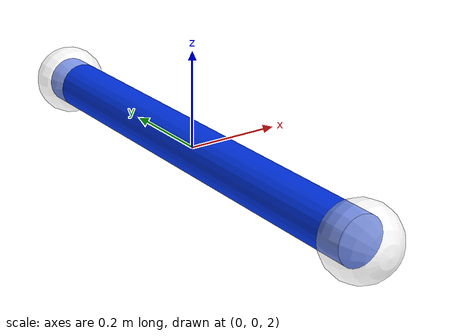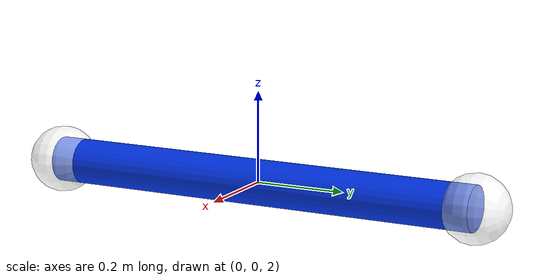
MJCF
<mujoco>
	<option>
		<flag sensornoise="enable"  contact="enable"/>
	</option>
	<worldbody>
    <light diffuse=".5 .5 .5" pos="0 0 5" dir="0 0 -1"/>
		<geom type="plane" size="50 50 0.1" rgba="0.1 0.9 0.7 1"/>
		<body pos="0 0 2" euler="90 0 0">
		<geom type="sphere" pos="0 0 -0.5" size="0.075" rgba="1 1 1 0.5"/>
		<geom type="sphere" pos="0 0 0.5" size="0.075" rgba="1 1 1 0.5"/>
			<joint name="pin" type="hinge" pos="0 0 0.5" axis="0 1 0" damping="5.0"/>
			<geom type="cylinder" size=".05 .5" rgba="0 .2 0.9 1" />
			<inertial mass="0.1" pos="0 0 0.25" diaginertia="0.1 0.1 0.1"/>
			<body pos="0 0 0" euler="0 0 0">
				<joint name="pin2" type="hinge" pos="0 0 -0.5" axis="0 1 0" damping="5.0"/>
				<geom type="cylinder" size=".05 .5" rgba="0.9 0.5 0 1" />
				<inertial mass="0.2" pos="0 0 0.25" diaginertia="0.1 0.1 0.1"/>
			</body>
		</body>
	</worldbody>
	<actuator>
        <position name="torque1" joint="pin" kp="100" gear="1" ctrlrange="-3.14 3.14" ctrllimited="true"/>
        <position name="torque" joint="pin2" kp="100" gear="1" ctrlrange="-3.14 3.14" ctrllimited="true"/>
    </actuator>
	<sensor>
		<jointpos joint="pin" noise="0"/>
		<jointpos joint="pin2" noise="0"/>
		<jointvel joint="pin" noise="0"/>
		<jointvel joint="pin2" noise="0"/>
	</sensor>
</mujoco>
